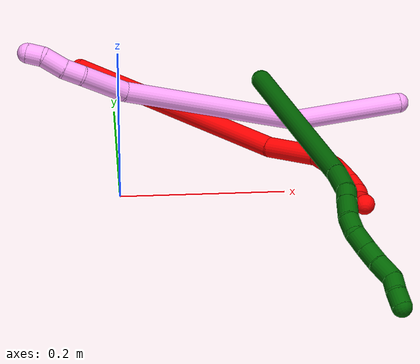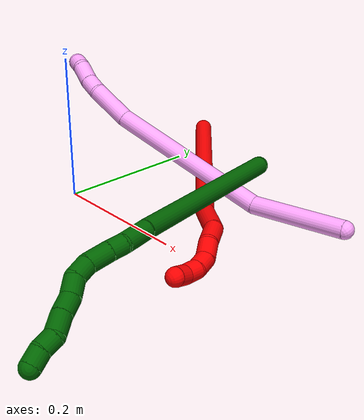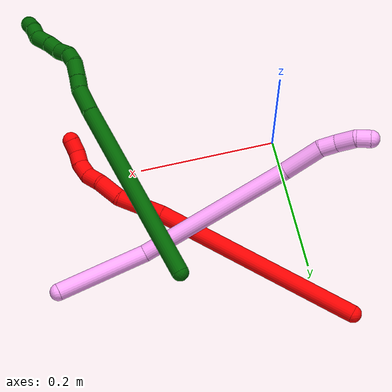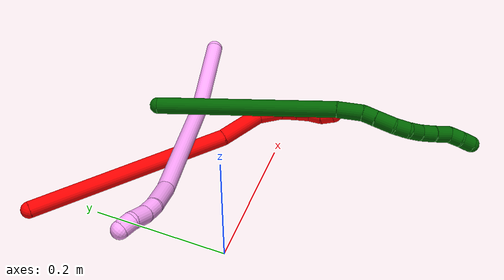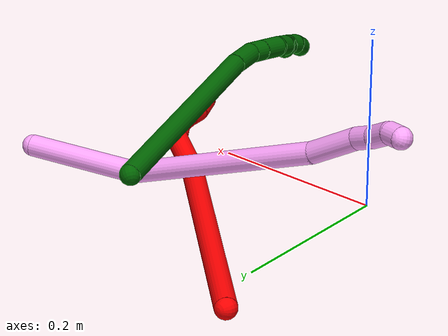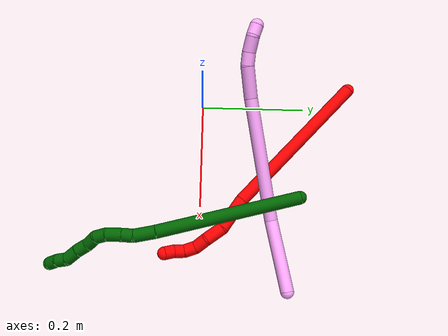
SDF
<sdf version="1.7">
 <world name="default">
  <model name="2">
   <static>0</static>
   <link name="2">
    <collision name="collision-cylinder-e_1_1_4">
     <pose>0.050099 -0.108665 0.09773 0.83833 0.330243 0.148227</pose>
     <geometry><cylinder><radius>0.0125</radius><length>0.308992</length></cylinder></geometry>
     <surface>
      <friction><ode><mu>1.16</mu><mu2>1.16</mu2><slip1>0</slip1><slip2>0</slip2></ode></friction>
      <contact><ode><kp>1e+06</kp><kd>1</kd><max_vel>0</max_vel><min_depth>0.001</min_depth></ode></contact>
     </surface>
    </collision>
    <visual name="visual-cylinder-e_1_1_4">
     <pose>0.050099 -0.108665 0.09773 0.83833 0.330243 0.148227</pose>
     <geometry><cylinder><radius>0.0125</radius><length>0.308992</length></cylinder></geometry>
     <material><ambient>1 0 0 1</ambient></material>
    </visual>
    <collision name="collision-cylinder-e_2_4_5">
     <pose>0.115015 -0.242303 0.211619 0.996471 0.462157 0.254608</pose>
     <geometry><cylinder><radius>0.0125</radius><length>0.066466</length></cylinder></geometry>
     <surface>
      <friction><ode><mu>1.16</mu><mu2>1.16</mu2><slip1>0</slip1><slip2>0</slip2></ode></friction>
      <contact><ode><kp>1e+06</kp><kd>1</kd><max_vel>0</max_vel><min_depth>0.001</min_depth></ode></contact>
     </surface>
    </collision>
    <visual name="visual-cylinder-e_2_4_5">
     <pose>0.115015 -0.242303 0.211619 0.996471 0.462157 0.254608</pose>
     <geometry><cylinder><radius>0.0125</radius><length>0.066466</length></cylinder></geometry>
     <material><ambient>1 0 0 1</ambient></material>
    </visual>
    <collision name="collision-cylinder-e_3_5_6">
     <pose>0.134797 -0.277608 0.241687 0.638916 0.279012 0.09283</pose>
     <geometry><cylinder><radius>0.0125</radius><length>0.036045</length></cylinder></geometry>
     <surface>
      <friction><ode><mu>1.16</mu><mu2>1.16</mu2><slip1>0</slip1><slip2>0</slip2></ode></friction>
      <contact><ode><kp>1e+06</kp><kd>1</kd><max_vel>0</max_vel><min_depth>0.001</min_depth></ode></contact>
     </surface>
    </collision>
    <visual name="visual-cylinder-e_3_5_6">
     <pose>0.134797 -0.277608 0.241687 0.638916 0.279012 0.09283</pose>
     <geometry><cylinder><radius>0.0125</radius><length>0.036045</length></cylinder></geometry>
     <material><ambient>1 0 0 1</ambient></material>
    </visual>
    <collision name="collision-cylinder-e_4_6_7">
     <pose>0.139034 -0.296572 0.265203 0.731991 -0.056193 -0.021542</pose>
     <geometry><cylinder><radius>0.0125</radius><length>0.025873</length></cylinder></geometry>
     <surface>
      <friction><ode><mu>1.16</mu><mu2>1.16</mu2><slip1>0</slip1><slip2>0</slip2></ode></friction>
      <contact><ode><kp>1e+06</kp><kd>1</kd><max_vel>0</max_vel><min_depth>0.001</min_depth></ode></contact>
     </surface>
    </collision>
    <visual name="visual-cylinder-e_4_6_7">
     <pose>0.139034 -0.296572 0.265203 0.731991 -0.056193 -0.021542</pose>
     <geometry><cylinder><radius>0.0125</radius><length>0.025873</length></cylinder></geometry>
     <material><ambient>1 0 0 1</ambient></material>
    </visual>
    <collision name="collision-cylinder-e_5_7_8">
     <pose>0.139715 -0.30933 0.285144 0.379799 0.125849 0.024221</pose>
     <geometry><cylinder><radius>0.0125</radius><length>0.022431</length></cylinder></geometry>
     <surface>
      <friction><ode><mu>1.16</mu><mu2>1.16</mu2><slip1>0</slip1><slip2>0</slip2></ode></friction>
      <contact><ode><kp>1e+06</kp><kd>1</kd><max_vel>0</max_vel><min_depth>0.001</min_depth></ode></contact>
     </surface>
    </collision>
    <visual name="visual-cylinder-e_5_7_8">
     <pose>0.139715 -0.30933 0.285144 0.379799 0.125849 0.024221</pose>
     <geometry><cylinder><radius>0.0125</radius><length>0.022431</length></cylinder></geometry>
     <material><ambient>1 0 0 1</ambient></material>
    </visual>
    <collision name="collision-cylinder-e_6_8_9">
     <pose>0.142758 -0.313933 0.305349 0.048404 0.163969 0.003978</pose>
     <geometry><cylinder><radius>0.0125</radius><length>0.020034</length></cylinder></geometry>
     <surface>
      <friction><ode><mu>1.16</mu><mu2>1.16</mu2><slip1>0</slip1><slip2>0</slip2></ode></friction>
      <contact><ode><kp>1e+06</kp><kd>1</kd><max_vel>0</max_vel><min_depth>0.001</min_depth></ode></contact>
     </surface>
    </collision>
    <visual name="visual-cylinder-e_6_8_9">
     <pose>0.142758 -0.313933 0.305349 0.048404 0.163969 0.003978</pose>
     <geometry><cylinder><radius>0.0125</radius><length>0.020034</length></cylinder></geometry>
     <material><ambient>1 0 0 1</ambient></material>
    </visual>
    <collision name="collision-cylinder-e_7_9_2">
     <pose>0.149327 -0.315668 0.32392 0.143427 0.511497 0.037563</pose>
     <geometry><cylinder><radius>0.0125</radius><length>0.02016</length></cylinder></geometry>
     <surface>
      <friction><ode><mu>1.16</mu><mu2>1.16</mu2><slip1>0</slip1><slip2>0</slip2></ode></friction>
      <contact><ode><kp>1e+06</kp><kd>1</kd><max_vel>0</max_vel><min_depth>0.001</min_depth></ode></contact>
     </surface>
    </collision>
    <visual name="visual-cylinder-e_7_9_2">
     <pose>0.149327 -0.315668 0.32392 0.143427 0.511497 0.037563</pose>
     <geometry><cylinder><radius>0.0125</radius><length>0.02016</length></cylinder></geometry>
     <material><ambient>1 0 0 1</ambient></material>
    </visual>
    <collision name="collision-sphere-2">
     <pose>0.154261 -0.316924 0.33262 0 -0 0</pose>
     <geometry><sphere><radius>0.0125</radius></sphere></geometry>
     <surface>
      <friction><ode><mu>1.16</mu><mu2>1.16</mu2><slip1>0</slip1><slip2>0</slip2></ode></friction>
      <contact><ode><kp>1e+06</kp><kd>1</kd><max_vel>0</max_vel><min_depth>0.001</min_depth></ode></contact>
     </surface>
    </collision>
    <visual name="visual-sphere-2">
     <pose>0.154261 -0.316924 0.33262 0 -0 0</pose>
     <geometry><sphere><radius>0.0125</radius></sphere></geometry>
     <material><ambient>1 0 0 1</ambient></material>
    </visual>
    <collision name="collision-sphere-9">
     <pose>0.144393 -0.314411 0.31522 0 -0 0</pose>
     <geometry><sphere><radius>0.0125</radius></sphere></geometry>
     <surface>
      <friction><ode><mu>1.16</mu><mu2>1.16</mu2><slip1>0</slip1><slip2>0</slip2></ode></friction>
      <contact><ode><kp>1e+06</kp><kd>1</kd><max_vel>0</max_vel><min_depth>0.001</min_depth></ode></contact>
     </surface>
    </collision>
    <visual name="visual-sphere-9">
     <pose>0.144393 -0.314411 0.31522 0 -0 0</pose>
     <geometry><sphere><radius>0.0125</radius></sphere></geometry>
     <material><ambient>1 0 0 1</ambient></material>
    </visual>
    <collision name="collision-sphere-4">
     <pose>0.100198 -0.217329 0.195459 0 -0 0</pose>
     <geometry><sphere><radius>0.0125</radius></sphere></geometry>
     <surface>
      <friction><ode><mu>1.16</mu><mu2>1.16</mu2><slip1>0</slip1><slip2>0</slip2></ode></friction>
      <contact><ode><kp>1e+06</kp><kd>1</kd><max_vel>0</max_vel><min_depth>0.001</min_depth></ode></contact>
     </surface>
    </collision>
    <visual name="visual-sphere-4">
     <pose>0.100198 -0.217329 0.195459 0 -0 0</pose>
     <geometry><sphere><radius>0.0125</radius></sphere></geometry>
     <material><ambient>1 0 0 1</ambient></material>
    </visual>
    <collision name="collision-sphere-1">
     <geometry><sphere><radius>0.0125</radius></sphere></geometry>
     <surface>
      <friction><ode><mu>1.16</mu><mu2>1.16</mu2><slip1>0</slip1><slip2>0</slip2></ode></friction>
      <contact><ode><kp>1e+06</kp><kd>1</kd><max_vel>0</max_vel><min_depth>0.001</min_depth></ode></contact>
     </surface>
    </collision>
    <visual name="visual-sphere-1">
     <geometry><sphere><radius>0.0125</radius></sphere></geometry>
     <material><ambient>1 0 0 1</ambient></material>
    </visual>
    <collision name="collision-sphere-8">
     <pose>0.141123 -0.313455 0.295478 0 -0 0</pose>
     <geometry><sphere><radius>0.0125</radius></sphere></geometry>
     <surface>
      <friction><ode><mu>1.16</mu><mu2>1.16</mu2><slip1>0</slip1><slip2>0</slip2></ode></friction>
      <contact><ode><kp>1e+06</kp><kd>1</kd><max_vel>0</max_vel><min_depth>0.001</min_depth></ode></contact>
     </surface>
    </collision>
    <visual name="visual-sphere-8">
     <pose>0.141123 -0.313455 0.295478 0 -0 0</pose>
     <geometry><sphere><radius>0.0125</radius></sphere></geometry>
     <material><ambient>1 0 0 1</ambient></material>
    </visual>
    <collision name="collision-sphere-5">
     <pose>0.129833 -0.267277 0.22778 0 -0 0</pose>
     <geometry><sphere><radius>0.0125</radius></sphere></geometry>
     <surface>
      <friction><ode><mu>1.16</mu><mu2>1.16</mu2><slip1>0</slip1><slip2>0</slip2></ode></friction>
      <contact><ode><kp>1e+06</kp><kd>1</kd><max_vel>0</max_vel><min_depth>0.001</min_depth></ode></contact>
     </surface>
    </collision>
    <visual name="visual-sphere-5">
     <pose>0.129833 -0.267277 0.22778 0 -0 0</pose>
     <geometry><sphere><radius>0.0125</radius></sphere></geometry>
     <material><ambient>1 0 0 1</ambient></material>
    </visual>
    <collision name="collision-sphere-6">
     <pose>0.13976 -0.28794 0.255595 0 -0 0</pose>
     <geometry><sphere><radius>0.0125</radius></sphere></geometry>
     <surface>
      <friction><ode><mu>1.16</mu><mu2>1.16</mu2><slip1>0</slip1><slip2>0</slip2></ode></friction>
      <contact><ode><kp>1e+06</kp><kd>1</kd><max_vel>0</max_vel><min_depth>0.001</min_depth></ode></contact>
     </surface>
    </collision>
    <visual name="visual-sphere-6">
     <pose>0.13976 -0.28794 0.255595 0 -0 0</pose>
     <geometry><sphere><radius>0.0125</radius></sphere></geometry>
     <material><ambient>1 0 0 1</ambient></material>
    </visual>
    <collision name="collision-sphere-7">
     <pose>0.138307 -0.305205 0.27481 0 -0 0</pose>
     <geometry><sphere><radius>0.0125</radius></sphere></geometry>
     <surface>
      <friction><ode><mu>1.16</mu><mu2>1.16</mu2><slip1>0</slip1><slip2>0</slip2></ode></friction>
      <contact><ode><kp>1e+06</kp><kd>1</kd><max_vel>0</max_vel><min_depth>0.001</min_depth></ode></contact>
     </surface>
    </collision>
    <visual name="visual-sphere-7">
     <pose>0.138307 -0.305205 0.27481 0 -0 0</pose>
     <geometry><sphere><radius>0.0125</radius></sphere></geometry>
     <material><ambient>1 0 0 1</ambient></material>
    </visual>
    <inertial>
     <pose>0.08117 -0.173905 0.15776 0 -0 0</pose>
     <mass>0.5</mass>
     <inertia>
      <ixx>0.002711</ixx>
      <ixy>0</ixy>
      <ixz>0</ixz>
      <iyy>0.002076</iyy>
      <iyz>0</iyz>
      <izz>0.000974</izz>
     </inertia>
    </inertial>
   </link>
   <pose>-0.040381 0.288507 0.012498 1.88017 -1.21997 -0.34345</pose>
  </model>
  <model name="4">
   <static>0</static>
   <link name="4">
    <collision name="collision-cylinder-e_1_1_4">
     <pose>-0.058316 0.021165 -0.025637 -2.45145 -1.05268 2.03353</pose>
     <geometry><cylinder><radius>0.0125</radius><length>0.134254</length></cylinder></geometry>
     <surface>
      <friction><ode><mu>1.16</mu><mu2>1.16</mu2><slip1>0</slip1><slip2>0</slip2></ode></friction>
      <contact><ode><kp>1e+06</kp><kd>1</kd><max_vel>0</max_vel><min_depth>0.001</min_depth></ode></contact>
     </surface>
    </collision>
    <visual name="visual-cylinder-e_1_1_4">
     <pose>-0.058316 0.021165 -0.025637 -2.45145 -1.05268 2.03353</pose>
     <geometry><cylinder><radius>0.0125</radius><length>0.134254</length></cylinder></geometry>
     <material><ambient>1 0.65098 0.996078 1</ambient></material>
    </visual>
    <collision name="collision-cylinder-e_2_4_5">
     <pose>-0.229973 0.044804 -0.07711 -3.0461 -1.34567 3.02181</pose>
     <geometry><cylinder><radius>0.0125</radius><length>0.232547</length></cylinder></geometry>
     <surface>
      <friction><ode><mu>1.16</mu><mu2>1.16</mu2><slip1>0</slip1><slip2>0</slip2></ode></friction>
      <contact><ode><kp>1e+06</kp><kd>1</kd><max_vel>0</max_vel><min_depth>0.001</min_depth></ode></contact>
     </surface>
    </collision>
    <visual name="visual-cylinder-e_2_4_5">
     <pose>-0.229973 0.044804 -0.07711 -3.0461 -1.34567 3.02181</pose>
     <geometry><cylinder><radius>0.0125</radius><length>0.232547</length></cylinder></geometry>
     <material><ambient>1 0.65098 0.996078 1</ambient></material>
    </visual>
    <collision name="collision-cylinder-e_3_5_6">
     <pose>-0.372903 0.043565 -0.106049 2.26667 -1.40871 -2.13533</pose>
     <geometry><cylinder><radius>0.0125</radius><length>0.059968</length></cylinder></geometry>
     <surface>
      <friction><ode><mu>1.16</mu><mu2>1.16</mu2><slip1>0</slip1><slip2>0</slip2></ode></friction>
      <contact><ode><kp>1e+06</kp><kd>1</kd><max_vel>0</max_vel><min_depth>0.001</min_depth></ode></contact>
     </surface>
    </collision>
    <visual name="visual-cylinder-e_3_5_6">
     <pose>-0.372903 0.043565 -0.106049 2.26667 -1.40871 -2.13533</pose>
     <geometry><cylinder><radius>0.0125</radius><length>0.059968</length></cylinder></geometry>
     <material><ambient>1 0.65098 0.996078 1</ambient></material>
    </visual>
    <collision name="collision-cylinder-e_4_6_7">
     <pose>-0.414387 0.040962 -0.108551 -1.07497 -1.46509 0.984248</pose>
     <geometry><cylinder><radius>0.0125</radius><length>0.023919</length></cylinder></geometry>
     <surface>
      <friction><ode><mu>1.16</mu><mu2>1.16</mu2><slip1>0</slip1><slip2>0</slip2></ode></friction>
      <contact><ode><kp>1e+06</kp><kd>1</kd><max_vel>0</max_vel><min_depth>0.001</min_depth></ode></contact>
     </surface>
    </collision>
    <visual name="visual-cylinder-e_4_6_7">
     <pose>-0.414387 0.040962 -0.108551 -1.07497 -1.46509 0.984248</pose>
     <geometry><cylinder><radius>0.0125</radius><length>0.023919</length></cylinder></geometry>
     <material><ambient>1 0.65098 0.996078 1</ambient></material>
    </visual>
    <collision name="collision-cylinder-e_5_7_8">
     <pose>-0.440468 0.042212 -0.104877 -0.045831 -1.35728 0.036961</pose>
     <geometry><cylinder><radius>0.0125</radius><length>0.029036</length></cylinder></geometry>
     <surface>
      <friction><ode><mu>1.16</mu><mu2>1.16</mu2><slip1>0</slip1><slip2>0</slip2></ode></friction>
      <contact><ode><kp>1e+06</kp><kd>1</kd><max_vel>0</max_vel><min_depth>0.001</min_depth></ode></contact>
     </surface>
    </collision>
    <visual name="visual-cylinder-e_5_7_8">
     <pose>-0.440468 0.042212 -0.104877 -0.045831 -1.35728 0.036961</pose>
     <geometry><cylinder><radius>0.0125</radius><length>0.029036</length></cylinder></geometry>
     <material><ambient>1 0.65098 0.996078 1</ambient></material>
    </visual>
    <collision name="collision-cylinder-e_6_8_2">
     <pose>-0.463724 0.046608 -0.100238 -1.21812 -1.10715 0.814033</pose>
     <geometry><cylinder><radius>0.0125</radius><length>0.020277</length></cylinder></geometry>
     <surface>
      <friction><ode><mu>1.16</mu><mu2>1.16</mu2><slip1>0</slip1><slip2>0</slip2></ode></friction>
      <contact><ode><kp>1e+06</kp><kd>1</kd><max_vel>0</max_vel><min_depth>0.001</min_depth></ode></contact>
     </surface>
    </collision>
    <visual name="visual-cylinder-e_6_8_2">
     <pose>-0.463724 0.046608 -0.100238 -1.21812 -1.10715 0.814033</pose>
     <geometry><cylinder><radius>0.0125</radius><length>0.020277</length></cylinder></geometry>
     <material><ambient>1 0.65098 0.996078 1</ambient></material>
    </visual>
    <collision name="collision-sphere-2">
     <pose>-0.472792 0.050863 -0.098672 0 -0 0</pose>
     <geometry><sphere><radius>0.0125</radius></sphere></geometry>
     <surface>
      <friction><ode><mu>1.16</mu><mu2>1.16</mu2><slip1>0</slip1><slip2>0</slip2></ode></friction>
      <contact><ode><kp>1e+06</kp><kd>1</kd><max_vel>0</max_vel><min_depth>0.001</min_depth></ode></contact>
     </surface>
    </collision>
    <visual name="visual-sphere-2">
     <pose>-0.472792 0.050863 -0.098672 0 -0 0</pose>
     <geometry><sphere><radius>0.0125</radius></sphere></geometry>
     <material><ambient>1 0.65098 0.996078 1</ambient></material>
    </visual>
    <collision name="collision-sphere-4">
     <pose>-0.116633 0.04233 -0.051273 0 -0 0</pose>
     <geometry><sphere><radius>0.0125</radius></sphere></geometry>
     <surface>
      <friction><ode><mu>1.16</mu><mu2>1.16</mu2><slip1>0</slip1><slip2>0</slip2></ode></friction>
      <contact><ode><kp>1e+06</kp><kd>1</kd><max_vel>0</max_vel><min_depth>0.001</min_depth></ode></contact>
     </surface>
    </collision>
    <visual name="visual-sphere-4">
     <pose>-0.116633 0.04233 -0.051273 0 -0 0</pose>
     <geometry><sphere><radius>0.0125</radius></sphere></geometry>
     <material><ambient>1 0.65098 0.996078 1</ambient></material>
    </visual>
    <collision name="collision-sphere-1">
     <geometry><sphere><radius>0.0125</radius></sphere></geometry>
     <surface>
      <friction><ode><mu>1.16</mu><mu2>1.16</mu2><slip1>0</slip1><slip2>0</slip2></ode></friction>
      <contact><ode><kp>1e+06</kp><kd>1</kd><max_vel>0</max_vel><min_depth>0.001</min_depth></ode></contact>
     </surface>
    </collision>
    <visual name="visual-sphere-1">
     <geometry><sphere><radius>0.0125</radius></sphere></geometry>
     <material><ambient>1 0.65098 0.996078 1</ambient></material>
    </visual>
    <collision name="collision-sphere-8">
     <pose>-0.454656 0.042353 -0.101804 0 -0 0</pose>
     <geometry><sphere><radius>0.0125</radius></sphere></geometry>
     <surface>
      <friction><ode><mu>1.16</mu><mu2>1.16</mu2><slip1>0</slip1><slip2>0</slip2></ode></friction>
      <contact><ode><kp>1e+06</kp><kd>1</kd><max_vel>0</max_vel><min_depth>0.001</min_depth></ode></contact>
     </surface>
    </collision>
    <visual name="visual-sphere-8">
     <pose>-0.454656 0.042353 -0.101804 0 -0 0</pose>
     <geometry><sphere><radius>0.0125</radius></sphere></geometry>
     <material><ambient>1 0.65098 0.996078 1</ambient></material>
    </visual>
    <collision name="collision-sphere-5">
     <pose>-0.343312 0.047279 -0.102947 0 -0 0</pose>
     <geometry><sphere><radius>0.0125</radius></sphere></geometry>
     <surface>
      <friction><ode><mu>1.16</mu><mu2>1.16</mu2><slip1>0</slip1><slip2>0</slip2></ode></friction>
      <contact><ode><kp>1e+06</kp><kd>1</kd><max_vel>0</max_vel><min_depth>0.001</min_depth></ode></contact>
     </surface>
    </collision>
    <visual name="visual-sphere-5">
     <pose>-0.343312 0.047279 -0.102947 0 -0 0</pose>
     <geometry><sphere><radius>0.0125</radius></sphere></geometry>
     <material><ambient>1 0.65098 0.996078 1</ambient></material>
    </visual>
    <collision name="collision-sphere-6">
     <pose>-0.402494 0.039852 -0.109151 0 -0 0</pose>
     <geometry><sphere><radius>0.0125</radius></sphere></geometry>
     <surface>
      <friction><ode><mu>1.16</mu><mu2>1.16</mu2><slip1>0</slip1><slip2>0</slip2></ode></friction>
      <contact><ode><kp>1e+06</kp><kd>1</kd><max_vel>0</max_vel><min_depth>0.001</min_depth></ode></contact>
     </surface>
    </collision>
    <visual name="visual-sphere-6">
     <pose>-0.402494 0.039852 -0.109151 0 -0 0</pose>
     <geometry><sphere><radius>0.0125</radius></sphere></geometry>
     <material><ambient>1 0.65098 0.996078 1</ambient></material>
    </visual>
    <collision name="collision-sphere-7">
     <pose>-0.426279 0.042072 -0.10795 0 -0 0</pose>
     <geometry><sphere><radius>0.0125</radius></sphere></geometry>
     <surface>
      <friction><ode><mu>1.16</mu><mu2>1.16</mu2><slip1>0</slip1><slip2>0</slip2></ode></friction>
      <contact><ode><kp>1e+06</kp><kd>1</kd><max_vel>0</max_vel><min_depth>0.001</min_depth></ode></contact>
     </surface>
    </collision>
    <visual name="visual-sphere-7">
     <pose>-0.426279 0.042072 -0.10795 0 -0 0</pose>
     <geometry><sphere><radius>0.0125</radius></sphere></geometry>
     <material><ambient>1 0.65098 0.996078 1</ambient></material>
    </visual>
    <inertial>
     <pose>-0.231549 0.038047 -0.070814 0 -0 0</pose>
     <mass>0.5</mass>
     <inertia>
      <ixx>-0.0002</ixx>
      <ixy>0</ixy>
      <ixz>0</ixz>
      <iyy>0.001378</iyy>
      <iyz>0</iyz>
      <izz>0.001143</izz>
     </inertia>
    </inertial>
   </link>
   <pose>0.355338 0.164814 0.022028 -1.13253 0.455709 0.009176</pose>
  </model>
  <model name="6">
   <static>0</static>
   <link name="6">
    <collision name="collision-cylinder-e_1_1_4">
     <pose>0.088441 -0.041696 -0.095433 2.72967 0.70404 2.1073</pose>
     <geometry><cylinder><radius>0.0125</radius><length>0.273261</length></cylinder></geometry>
     <surface>
      <friction><ode><mu>1.16</mu><mu2>1.16</mu2><slip1>0</slip1><slip2>0</slip2></ode></friction>
      <contact><ode><kp>1e+06</kp><kd>1</kd><max_vel>0</max_vel><min_depth>0.001</min_depth></ode></contact>
     </surface>
    </collision>
    <visual name="visual-cylinder-e_1_1_4">
     <pose>0.088441 -0.041696 -0.095433 2.72967 0.70404 2.1073</pose>
     <geometry><cylinder><radius>0.0125</radius><length>0.273261</length></cylinder></geometry>
     <material><ambient>0 0.392157 0.003922 1</ambient></material>
    </visual>
    <collision name="collision-cylinder-e_2_4_5">
     <pose>0.190589 -0.090539 -0.202893 2.60544 0.775133 1.95697</pose>
     <geometry><cylinder><radius>0.0125</radius><length>0.03917</length></cylinder></geometry>
     <surface>
      <friction><ode><mu>1.16</mu><mu2>1.16</mu2><slip1>0</slip1><slip2>0</slip2></ode></friction>
      <contact><ode><kp>1e+06</kp><kd>1</kd><max_vel>0</max_vel><min_depth>0.001</min_depth></ode></contact>
     </surface>
    </collision>
    <visual name="visual-cylinder-e_2_4_5">
     <pose>0.190589 -0.090539 -0.202893 2.60544 0.775133 1.95697</pose>
     <geometry><cylinder><radius>0.0125</radius><length>0.03917</length></cylinder></geometry>
     <material><ambient>0 0.392157 0.003922 1</ambient></material>
    </visual>
    <collision name="collision-cylinder-e_3_5_6">
     <pose>0.213126 -0.101184 -0.218859 2.4153 1.03295 1.96216</pose>
     <geometry><cylinder><radius>0.0125</radius><length>0.020567</length></cylinder></geometry>
     <surface>
      <friction><ode><mu>1.16</mu><mu2>1.16</mu2><slip1>0</slip1><slip2>0</slip2></ode></friction>
      <contact><ode><kp>1e+06</kp><kd>1</kd><max_vel>0</max_vel><min_depth>0.001</min_depth></ode></contact>
     </surface>
    </collision>
    <visual name="visual-cylinder-e_3_5_6">
     <pose>0.213126 -0.101184 -0.218859 2.4153 1.03295 1.96216</pose>
     <geometry><cylinder><radius>0.0125</radius><length>0.020567</length></cylinder></geometry>
     <material><ambient>0 0.392157 0.003922 1</ambient></material>
    </visual>
    <collision name="collision-cylinder-e_4_6_7">
     <pose>0.234451 -0.110405 -0.228664 2.36869 0.99027 1.85007</pose>
     <geometry><cylinder><radius>0.0125</radius><length>0.029882</length></cylinder></geometry>
     <surface>
      <friction><ode><mu>1.16</mu><mu2>1.16</mu2><slip1>0</slip1><slip2>0</slip2></ode></friction>
      <contact><ode><kp>1e+06</kp><kd>1</kd><max_vel>0</max_vel><min_depth>0.001</min_depth></ode></contact>
     </surface>
    </collision>
    <visual name="visual-cylinder-e_4_6_7">
     <pose>0.234451 -0.110405 -0.228664 2.36869 0.99027 1.85007</pose>
     <geometry><cylinder><radius>0.0125</radius><length>0.029882</length></cylinder></geometry>
     <material><ambient>0 0.392157 0.003922 1</ambient></material>
    </visual>
    <collision name="collision-cylinder-e_5_7_8">
     <pose>0.254162 -0.122813 -0.239584 2.21796 0.710903 1.28168</pose>
     <geometry><cylinder><radius>0.0125</radius><length>0.02212</length></cylinder></geometry>
     <surface>
      <friction><ode><mu>1.16</mu><mu2>1.16</mu2><slip1>0</slip1><slip2>0</slip2></ode></friction>
      <contact><ode><kp>1e+06</kp><kd>1</kd><max_vel>0</max_vel><min_depth>0.001</min_depth></ode></contact>
     </surface>
    </collision>
    <visual name="visual-cylinder-e_5_7_8">
     <pose>0.254162 -0.122813 -0.239584 2.21796 0.710903 1.28168</pose>
     <geometry><cylinder><radius>0.0125</radius><length>0.02212</length></cylinder></geometry>
     <material><ambient>0 0.392157 0.003922 1</ambient></material>
    </visual>
    <collision name="collision-cylinder-e_6_8_9">
     <pose>0.264695 -0.139762 -0.24951 2.0141 0.284043 0.444869</pose>
     <geometry><cylinder><radius>0.0125</radius><length>0.023671</length></cylinder></geometry>
     <surface>
      <friction><ode><mu>1.16</mu><mu2>1.16</mu2><slip1>0</slip1><slip2>0</slip2></ode></friction>
      <contact><ode><kp>1e+06</kp><kd>1</kd><max_vel>0</max_vel><min_depth>0.001</min_depth></ode></contact>
     </surface>
    </collision>
    <visual name="visual-cylinder-e_6_8_9">
     <pose>0.264695 -0.139762 -0.24951 2.0141 0.284043 0.444869</pose>
     <geometry><cylinder><radius>0.0125</radius><length>0.023671</length></cylinder></geometry>
     <material><ambient>0 0.392157 0.003922 1</ambient></material>
    </visual>
    <collision name="collision-cylinder-e_7_9_10">
     <pose>0.273209 -0.158339 -0.261389 2.27095 0.44591 0.907187</pose>
     <geometry><cylinder><radius>0.0125</radius><length>0.0241</length></cylinder></geometry>
     <surface>
      <friction><ode><mu>1.16</mu><mu2>1.16</mu2><slip1>0</slip1><slip2>0</slip2></ode></friction>
      <contact><ode><kp>1e+06</kp><kd>1</kd><max_vel>0</max_vel><min_depth>0.001</min_depth></ode></contact>
     </surface>
    </collision>
    <visual name="visual-cylinder-e_7_9_10">
     <pose>0.273209 -0.158339 -0.261389 2.27095 0.44591 0.907187</pose>
     <geometry><cylinder><radius>0.0125</radius><length>0.0241</length></cylinder></geometry>
     <material><ambient>0 0.392157 0.003922 1</ambient></material>
    </visual>
    <collision name="collision-cylinder-e_8_10_11">
     <pose>0.282736 -0.17677 -0.27629 2.23356 0.325415 0.648974</pose>
     <geometry><cylinder><radius>0.0125</radius><length>0.027088</length></cylinder></geometry>
     <surface>
      <friction><ode><mu>1.16</mu><mu2>1.16</mu2><slip1>0</slip1><slip2>0</slip2></ode></friction>
      <contact><ode><kp>1e+06</kp><kd>1</kd><max_vel>0</max_vel><min_depth>0.001</min_depth></ode></contact>
     </surface>
    </collision>
    <visual name="visual-cylinder-e_8_10_11">
     <pose>0.282736 -0.17677 -0.27629 2.23356 0.325415 0.648974</pose>
     <geometry><cylinder><radius>0.0125</radius><length>0.027088</length></cylinder></geometry>
     <material><ambient>0 0.392157 0.003922 1</ambient></material>
    </visual>
    <collision name="collision-cylinder-e_9_11_12">
     <pose>0.294349 -0.192561 -0.288061 2.16984 0.814435 1.36974</pose>
     <geometry><cylinder><radius>0.0125</radius><length>0.020025</length></cylinder></geometry>
     <surface>
      <friction><ode><mu>1.16</mu><mu2>1.16</mu2><slip1>0</slip1><slip2>0</slip2></ode></friction>
      <contact><ode><kp>1e+06</kp><kd>1</kd><max_vel>0</max_vel><min_depth>0.001</min_depth></ode></contact>
     </surface>
    </collision>
    <visual name="visual-cylinder-e_9_11_12">
     <pose>0.294349 -0.192561 -0.288061 2.16984 0.814435 1.36974</pose>
     <geometry><cylinder><radius>0.0125</radius><length>0.020025</length></cylinder></geometry>
     <material><ambient>0 0.392157 0.003922 1</ambient></material>
    </visual>
    <collision name="collision-cylinder-e_10_12_2">
     <pose>0.307311 -0.205908 -0.295103 1.96242 0.600127 0.866432</pose>
     <geometry><cylinder><radius>0.0125</radius><length>0.020114</length></cylinder></geometry>
     <surface>
      <friction><ode><mu>1.16</mu><mu2>1.16</mu2><slip1>0</slip1><slip2>0</slip2></ode></friction>
      <contact><ode><kp>1e+06</kp><kd>1</kd><max_vel>0</max_vel><min_depth>0.001</min_depth></ode></contact>
     </surface>
    </collision>
    <visual name="visual-cylinder-e_10_12_2">
     <pose>0.307311 -0.205908 -0.295103 1.96242 0.600127 0.866432</pose>
     <geometry><cylinder><radius>0.0125</radius><length>0.020114</length></cylinder></geometry>
     <material><ambient>0 0.392157 0.003922 1</ambient></material>
    </visual>
    <collision name="collision-sphere-2">
     <pose>0.31299 -0.213579 -0.298271 0 -0 0</pose>
     <geometry><sphere><radius>0.0125</radius></sphere></geometry>
     <surface>
      <friction><ode><mu>1.16</mu><mu2>1.16</mu2><slip1>0</slip1><slip2>0</slip2></ode></friction>
      <contact><ode><kp>1e+06</kp><kd>1</kd><max_vel>0</max_vel><min_depth>0.001</min_depth></ode></contact>
     </surface>
    </collision>
    <visual name="visual-sphere-2">
     <pose>0.31299 -0.213579 -0.298271 0 -0 0</pose>
     <geometry><sphere><radius>0.0125</radius></sphere></geometry>
     <material><ambient>0 0.392157 0.003922 1</ambient></material>
    </visual>
    <collision name="collision-sphere-12">
     <pose>0.301631 -0.198236 -0.291935 0 -0 0</pose>
     <geometry><sphere><radius>0.0125</radius></sphere></geometry>
     <surface>
      <friction><ode><mu>1.16</mu><mu2>1.16</mu2><slip1>0</slip1><slip2>0</slip2></ode></friction>
      <contact><ode><kp>1e+06</kp><kd>1</kd><max_vel>0</max_vel><min_depth>0.001</min_depth></ode></contact>
     </surface>
    </collision>
    <visual name="visual-sphere-12">
     <pose>0.301631 -0.198236 -0.291935 0 -0 0</pose>
     <geometry><sphere><radius>0.0125</radius></sphere></geometry>
     <material><ambient>0 0.392157 0.003922 1</ambient></material>
    </visual>
    <collision name="collision-sphere-11">
     <pose>0.287066 -0.186887 -0.284186 0 -0 0</pose>
     <geometry><sphere><radius>0.0125</radius></sphere></geometry>
     <surface>
      <friction><ode><mu>1.16</mu><mu2>1.16</mu2><slip1>0</slip1><slip2>0</slip2></ode></friction>
      <contact><ode><kp>1e+06</kp><kd>1</kd><max_vel>0</max_vel><min_depth>0.001</min_depth></ode></contact>
     </surface>
    </collision>
    <visual name="visual-sphere-11">
     <pose>0.287066 -0.186887 -0.284186 0 -0 0</pose>
     <geometry><sphere><radius>0.0125</radius></sphere></geometry>
     <material><ambient>0 0.392157 0.003922 1</ambient></material>
    </visual>
    <collision name="collision-sphere-10">
     <pose>0.278406 -0.166654 -0.268394 0 -0 0</pose>
     <geometry><sphere><radius>0.0125</radius></sphere></geometry>
     <surface>
      <friction><ode><mu>1.16</mu><mu2>1.16</mu2><slip1>0</slip1><slip2>0</slip2></ode></friction>
      <contact><ode><kp>1e+06</kp><kd>1</kd><max_vel>0</max_vel><min_depth>0.001</min_depth></ode></contact>
     </surface>
    </collision>
    <visual name="visual-sphere-10">
     <pose>0.278406 -0.166654 -0.268394 0 -0 0</pose>
     <geometry><sphere><radius>0.0125</radius></sphere></geometry>
     <material><ambient>0 0.392157 0.003922 1</ambient></material>
    </visual>
    <collision name="collision-sphere-9">
     <pose>0.268012 -0.150025 -0.254384 0 -0 0</pose>
     <geometry><sphere><radius>0.0125</radius></sphere></geometry>
     <surface>
      <friction><ode><mu>1.16</mu><mu2>1.16</mu2><slip1>0</slip1><slip2>0</slip2></ode></friction>
      <contact><ode><kp>1e+06</kp><kd>1</kd><max_vel>0</max_vel><min_depth>0.001</min_depth></ode></contact>
     </surface>
    </collision>
    <visual name="visual-sphere-9">
     <pose>0.268012 -0.150025 -0.254384 0 -0 0</pose>
     <geometry><sphere><radius>0.0125</radius></sphere></geometry>
     <material><ambient>0 0.392157 0.003922 1</ambient></material>
    </visual>
    <collision name="collision-sphere-4">
     <pose>0.176883 -0.083392 -0.190866 0 -0 0</pose>
     <geometry><sphere><radius>0.0125</radius></sphere></geometry>
     <surface>
      <friction><ode><mu>1.16</mu><mu2>1.16</mu2><slip1>0</slip1><slip2>0</slip2></ode></friction>
      <contact><ode><kp>1e+06</kp><kd>1</kd><max_vel>0</max_vel><min_depth>0.001</min_depth></ode></contact>
     </surface>
    </collision>
    <visual name="visual-sphere-4">
     <pose>0.176883 -0.083392 -0.190866 0 -0 0</pose>
     <geometry><sphere><radius>0.0125</radius></sphere></geometry>
     <material><ambient>0 0.392157 0.003922 1</ambient></material>
    </visual>
    <collision name="collision-sphere-1">
     <geometry><sphere><radius>0.0125</radius></sphere></geometry>
     <surface>
      <friction><ode><mu>1.16</mu><mu2>1.16</mu2><slip1>0</slip1><slip2>0</slip2></ode></friction>
      <contact><ode><kp>1e+06</kp><kd>1</kd><max_vel>0</max_vel><min_depth>0.001</min_depth></ode></contact>
     </surface>
    </collision>
    <visual name="visual-sphere-1">
     <geometry><sphere><radius>0.0125</radius></sphere></geometry>
     <material><ambient>0 0.392157 0.003922 1</ambient></material>
    </visual>
    <collision name="collision-sphere-8">
     <pose>0.261378 -0.129499 -0.244637 0 -0 0</pose>
     <geometry><sphere><radius>0.0125</radius></sphere></geometry>
     <surface>
      <friction><ode><mu>1.16</mu><mu2>1.16</mu2><slip1>0</slip1><slip2>0</slip2></ode></friction>
      <contact><ode><kp>1e+06</kp><kd>1</kd><max_vel>0</max_vel><min_depth>0.001</min_depth></ode></contact>
     </surface>
    </collision>
    <visual name="visual-sphere-8">
     <pose>0.261378 -0.129499 -0.244637 0 -0 0</pose>
     <geometry><sphere><radius>0.0125</radius></sphere></geometry>
     <material><ambient>0 0.392157 0.003922 1</ambient></material>
    </visual>
    <collision name="collision-sphere-5">
     <pose>0.204295 -0.097686 -0.214921 0 -0 0</pose>
     <geometry><sphere><radius>0.0125</radius></sphere></geometry>
     <surface>
      <friction><ode><mu>1.16</mu><mu2>1.16</mu2><slip1>0</slip1><slip2>0</slip2></ode></friction>
      <contact><ode><kp>1e+06</kp><kd>1</kd><max_vel>0</max_vel><min_depth>0.001</min_depth></ode></contact>
     </surface>
    </collision>
    <visual name="visual-sphere-5">
     <pose>0.204295 -0.097686 -0.214921 0 -0 0</pose>
     <geometry><sphere><radius>0.0125</radius></sphere></geometry>
     <material><ambient>0 0.392157 0.003922 1</ambient></material>
    </visual>
    <collision name="collision-sphere-6">
     <pose>0.221958 -0.104683 -0.222798 0 -0 0</pose>
     <geometry><sphere><radius>0.0125</radius></sphere></geometry>
     <surface>
      <friction><ode><mu>1.16</mu><mu2>1.16</mu2><slip1>0</slip1><slip2>0</slip2></ode></friction>
      <contact><ode><kp>1e+06</kp><kd>1</kd><max_vel>0</max_vel><min_depth>0.001</min_depth></ode></contact>
     </surface>
    </collision>
    <visual name="visual-sphere-6">
     <pose>0.221958 -0.104683 -0.222798 0 -0 0</pose>
     <geometry><sphere><radius>0.0125</radius></sphere></geometry>
     <material><ambient>0 0.392157 0.003922 1</ambient></material>
    </visual>
    <collision name="collision-sphere-7">
     <pose>0.246945 -0.116126 -0.234531 0 -0 0</pose>
     <geometry><sphere><radius>0.0125</radius></sphere></geometry>
     <surface>
      <friction><ode><mu>1.16</mu><mu2>1.16</mu2><slip1>0</slip1><slip2>0</slip2></ode></friction>
      <contact><ode><kp>1e+06</kp><kd>1</kd><max_vel>0</max_vel><min_depth>0.001</min_depth></ode></contact>
     </surface>
    </collision>
    <visual name="visual-sphere-7">
     <pose>0.246945 -0.116126 -0.234531 0 -0 0</pose>
     <geometry><sphere><radius>0.0125</radius></sphere></geometry>
     <material><ambient>0 0.392157 0.003922 1</ambient></material>
    </visual>
    <inertial>
     <pose>0.162458 -0.085895 -0.164107 0 -0 0</pose>
     <mass>0.5</mass>
     <inertia>
      <ixx>0.000496</ixx>
      <ixy>0</ixy>
      <ixz>0</ixz>
      <iyy>0.002309</iyy>
      <iyz>0</iyz>
      <izz>-0.00061</izz>
     </inertia>
    </inertial>
   </link>
   <pose>0.184216 0.185301 0.048919 2.13774 0.052569 -2.15976</pose>
  </model>
 </world>
</sdf>
